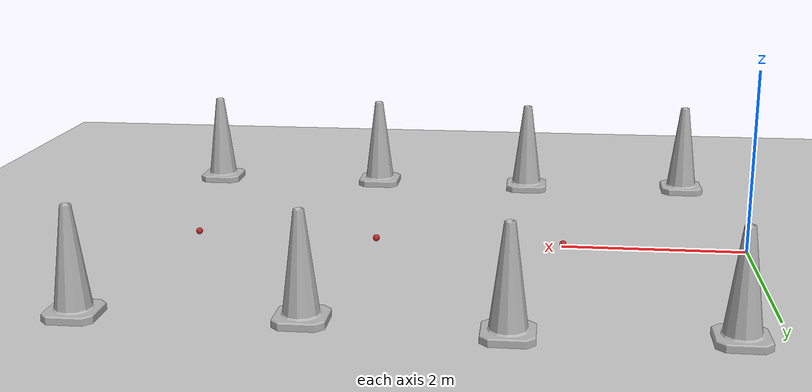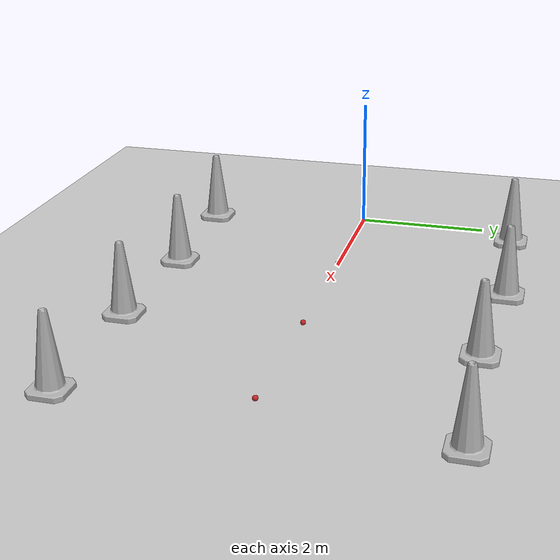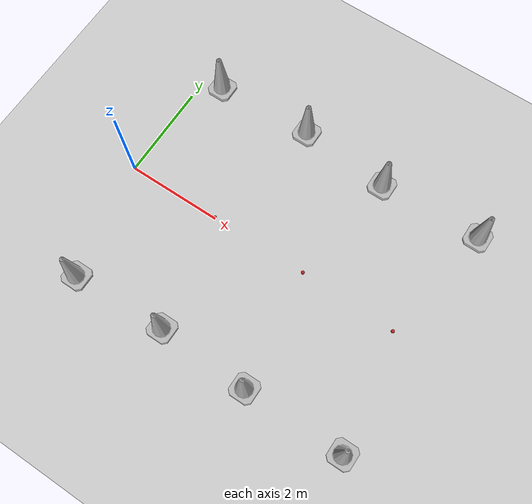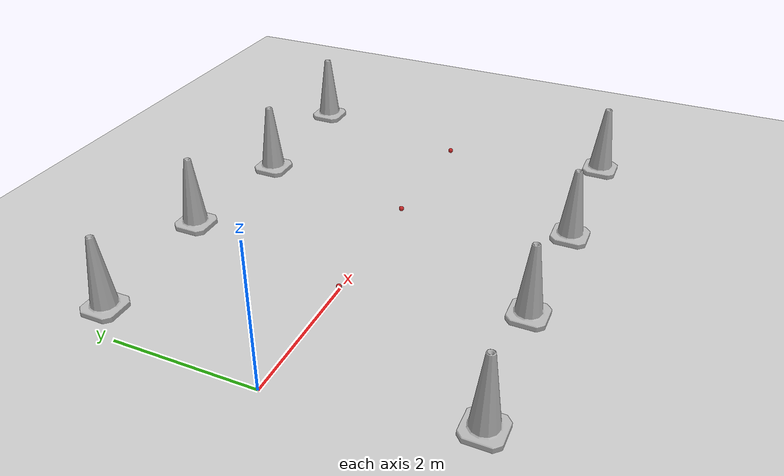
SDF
<sdf version="1.7">
 <world name="default">
  <light name="sun" type="directional">
   <pose>0 0 10 0 -0 0</pose>
   <diffuse>0.8 0.8 0.8 1</diffuse>
   <specular>0.2 0.2 0.2 1</specular>
   <attenuation>
    <range>1000</range>
    <constant>0.9</constant>
    <linear>0.01</linear>
    <quadratic>0.001</quadratic>
   </attenuation>
   <direction>-0.5 0.1 -0.9</direction>
   <spot><inner_angle>0</inner_angle><outer_angle>0</outer_angle><falloff>0</falloff></spot>
  </light>
  <model name="ground_plane">
   <static>1</static>
   <link name="link">
    <collision name="collision">
     <geometry><plane><normal>0 0 1</normal><size>100 100</size></plane></geometry>
     <surface>
      <contact><collide_bitmask>65535</collide_bitmask></contact>
      <friction><ode><mu>100</mu><mu2>50</mu2></ode></friction>
     </surface>
    </collision>
    <visual name="visual">
     <cast_shadows>0</cast_shadows>
     <geometry><plane><normal>0 0 1</normal><size>100 100</size></plane></geometry>
     <material>
      <script><uri>file://media/materials/scripts/gazebo.material</uri><name>Gazebo/Grey</name></script>
     </material>
    </visual>
   </link>
  </model>
  <gravity>0 0 -9.8</gravity>
  <magnetic_field>6e-06 2.3e-05 -4.2e-05</magnetic_field>
  <atmosphere type="adiabatic"/>
  <physics type="ode">
   <max_step_size>0.001</max_step_size>
   <real_time_factor>1</real_time_factor>
   <real_time_update_rate>1000</real_time_update_rate>
  </physics>
  <scene><ambient>0.4 0.4 0.4 1</ambient><background>0.7 0.7 0.7 1</background><shadows>1</shadows></scene>
  <spherical_coordinates>
   <surface_model>EARTH_WGS84</surface_model>
   <latitude_deg>0</latitude_deg>
   <longitude_deg>0</longitude_deg>
   <elevation>0</elevation>
   <heading_deg>0</heading_deg>
  </spherical_coordinates>
  <model name="Construction Cone">
   <link name="link">
    <collision name="collision">
     <geometry>
      <mesh><scale>10 10 10</scale><uri>model://construction_cone/meshes/construction_cone.dae</uri></mesh>
     </geometry>
    </collision>
    <visual name="visual">
     <geometry>
      <mesh><scale>10 10 10</scale><uri>model://construction_cone/meshes/construction_cone.dae</uri></mesh>
     </geometry>
    </visual>
    <inertial>
     <inertia><ixx>1</ixx><ixy>0</ixy><ixz>0</ixz><iyy>1</iyy><iyz>0</iyz><izz>1</izz></inertia>
     <mass>1</mass>
    </inertial>
   </link>
   <pose>0.45702 -2.45963 -0 0 -0 0</pose>
  </model>
  <model name="Construction Cone_0">
   <link name="link">
    <collision name="collision">
     <geometry>
      <mesh><scale>10 10 10</scale><uri>model://construction_cone/meshes/construction_cone.dae</uri></mesh>
     </geometry>
    </collision>
    <visual name="visual">
     <geometry>
      <mesh><scale>10 10 10</scale><uri>model://construction_cone/meshes/construction_cone.dae</uri></mesh>
     </geometry>
    </visual>
    <inertial>
     <inertia><ixx>1</ixx><ixy>0</ixy><ixz>0</ixz><iyy>1</iyy><iyz>0</iyz><izz>1</izz></inertia>
     <mass>1</mass>
    </inertial>
   </link>
   <pose>2.44863 -2.38158 -1e-05 -1e-06 0 0</pose>
  </model>
  <model name="Construction Cone_1">
   <link name="link">
    <collision name="collision">
     <geometry>
      <mesh><scale>10 10 10</scale><uri>model://construction_cone/meshes/construction_cone.dae</uri></mesh>
     </geometry>
    </collision>
    <visual name="visual">
     <geometry>
      <mesh><scale>10 10 10</scale><uri>model://construction_cone/meshes/construction_cone.dae</uri></mesh>
     </geometry>
    </visual>
    <inertial>
     <inertia><ixx>1</ixx><ixy>0</ixy><ixz>0</ixz><iyy>1</iyy><iyz>0</iyz><izz>1</izz></inertia>
     <mass>1</mass>
    </inertial>
   </link>
   <pose>4.38781 -2.45378 -0 0 -1e-06 0</pose>
  </model>
  <model name="Construction Cone_2">
   <link name="link">
    <collision name="collision">
     <geometry>
      <mesh><scale>10 10 10</scale><uri>model://construction_cone/meshes/construction_cone.dae</uri></mesh>
     </geometry>
    </collision>
    <visual name="visual">
     <geometry>
      <mesh><scale>10 10 10</scale><uri>model://construction_cone/meshes/construction_cone.dae</uri></mesh>
     </geometry>
    </visual>
    <inertial>
     <inertia><ixx>1</ixx><ixy>0</ixy><ixz>0</ixz><iyy>1</iyy><iyz>0</iyz><izz>1</izz></inertia>
     <mass>1</mass>
    </inertial>
   </link>
   <pose>6.51637 -2.45455 -0 0 -0 0</pose>
  </model>
  <model name="Construction Cone_3">
   <link name="link">
    <collision name="collision">
     <geometry>
      <mesh><scale>10 10 10</scale><uri>model://construction_cone/meshes/construction_cone.dae</uri></mesh>
     </geometry>
    </collision>
    <visual name="visual">
     <geometry>
      <mesh><scale>10 10 10</scale><uri>model://construction_cone/meshes/construction_cone.dae</uri></mesh>
     </geometry>
    </visual>
    <inertial>
     <inertia><ixx>1</ixx><ixy>0</ixy><ixz>0</ixz><iyy>1</iyy><iyz>0</iyz><izz>1</izz></inertia>
     <mass>1</mass>
    </inertial>
   </link>
   <pose>0.437987 2.49852 -0 0 -1e-06 0</pose>
  </model>
  <model name="Construction Cone_4">
   <link name="link">
    <collision name="collision">
     <geometry>
      <mesh><scale>10 10 10</scale><uri>model://construction_cone/meshes/construction_cone.dae</uri></mesh>
     </geometry>
    </collision>
    <visual name="visual">
     <geometry>
      <mesh><scale>10 10 10</scale><uri>model://construction_cone/meshes/construction_cone.dae</uri></mesh>
     </geometry>
    </visual>
    <inertial>
     <inertia><ixx>1</ixx><ixy>0</ixy><ixz>0</ixz><iyy>1</iyy><iyz>0</iyz><izz>1</izz></inertia>
     <mass>1</mass>
    </inertial>
   </link>
   <pose>2.49729 2.59361 -0 0 -0 0</pose>
  </model>
  <model name="Construction Cone_5">
   <link name="link">
    <collision name="collision">
     <geometry>
      <mesh><scale>10 10 10</scale><uri>model://construction_cone/meshes/construction_cone.dae</uri></mesh>
     </geometry>
    </collision>
    <visual name="visual">
     <geometry>
      <mesh><scale>10 10 10</scale><uri>model://construction_cone/meshes/construction_cone.dae</uri></mesh>
     </geometry>
    </visual>
    <inertial>
     <inertia><ixx>1</ixx><ixy>0</ixy><ixz>0</ixz><iyy>1</iyy><iyz>0</iyz><izz>1</izz></inertia>
     <mass>1</mass>
    </inertial>
   </link>
   <pose>4.40935 2.42738 -0 0 -1e-06 0</pose>
  </model>
  <model name="Construction Cone_6">
   <link name="link">
    <collision name="collision">
     <geometry>
      <mesh><scale>10 10 10</scale><uri>model://construction_cone/meshes/construction_cone.dae</uri></mesh>
     </geometry>
    </collision>
    <visual name="visual">
     <geometry>
      <mesh><scale>10 10 10</scale><uri>model://construction_cone/meshes/construction_cone.dae</uri></mesh>
     </geometry>
    </visual>
    <inertial>
     <inertia><ixx>1</ixx><ixy>0</ixy><ixz>0</ixz><iyy>1</iyy><iyz>0</iyz><izz>1</izz></inertia>
     <mass>1</mass>
    </inertial>
   </link>
   <pose>6.55742 2.51009 -0 0 -1e-06 0</pose>
  </model>
  <model name="cricket_ball">
   <link name="link">
    <pose>0 0 0.0375 0 -0 0</pose>
    <inertial>
     <mass>0.1467</mass>
     <inertia>
      <ixx>8.25187e-05</ixx>
      <ixy>0</ixy>
      <ixz>0</ixz>
      <iyy>8.25187e-05</iyy>
      <iyz>0</iyz>
      <izz>8.25187e-05</izz>
     </inertia>
    </inertial>
    <collision name="collision">
     <geometry><sphere><radius>0.0375</radius></sphere></geometry>
     <surface>
      <contact>
       <poissons_ratio>0.347</poissons_ratio>
       <elastic_modulus>8.8e+09</elastic_modulus>
       <ode><kp>100000</kp><kd>100</kd><max_vel>100</max_vel><min_depth>0.001</min_depth></ode>
      </contact>
      <friction>
       <torsional>
        <coefficient>1</coefficient>
        <use_patch_radius>0</use_patch_radius>
        <surface_radius>0.01</surface_radius>
       </torsional>
      </friction>
     </surface>
    </collision>
    <visual name="visual">
     <geometry><sphere><radius>0.0375</radius></sphere></geometry>
     <material>
      <script><uri>file://media/materials/scripts/gazebo.material</uri><name>Gazebo/Red</name></script>
     </material>
    </visual>
    <velocity_decay><linear>0</linear><angular>0.005</angular></velocity_decay>
   </link>
   <pose>1.98971 0.008875 -0.001014 0 -0 0</pose>
  </model>
  <model name="cricket_ball_0">
   <link name="link">
    <pose>0 0 0.0375 0 -0 0</pose>
    <inertial>
     <mass>0.1467</mass>
     <inertia>
      <ixx>8.25187e-05</ixx>
      <ixy>0</ixy>
      <ixz>0</ixz>
      <iyy>8.25187e-05</iyy>
      <iyz>0</iyz>
      <izz>8.25187e-05</izz>
     </inertia>
    </inertial>
    <collision name="collision">
     <geometry><sphere><radius>0.0375</radius></sphere></geometry>
     <surface>
      <contact>
       <poissons_ratio>0.347</poissons_ratio>
       <elastic_modulus>8.8e+09</elastic_modulus>
       <ode><kp>100000</kp><kd>100</kd><max_vel>100</max_vel><min_depth>0.001</min_depth></ode>
      </contact>
      <friction>
       <torsional>
        <coefficient>1</coefficient>
        <use_patch_radius>0</use_patch_radius>
        <surface_radius>0.01</surface_radius>
       </torsional>
      </friction>
     </surface>
    </collision>
    <visual name="visual">
     <geometry><sphere><radius>0.0375</radius></sphere></geometry>
     <material>
      <script><uri>file://media/materials/scripts/gazebo.material</uri><name>Gazebo/Red</name></script>
     </material>
    </visual>
    <velocity_decay><linear>0</linear><angular>0.005</angular></velocity_decay>
   </link>
   <pose>4.07025 0.01219 -0.001014 0 -0 0</pose>
  </model>
  <model name="cricket_ball_1">
   <link name="link">
    <pose>0 0 0.0375 0 -0 0</pose>
    <inertial>
     <mass>0.1467</mass>
     <inertia>
      <ixx>8.25187e-05</ixx>
      <ixy>0</ixy>
      <ixz>0</ixz>
      <iyy>8.25187e-05</iyy>
      <iyz>0</iyz>
      <izz>8.25187e-05</izz>
     </inertia>
    </inertial>
    <collision name="collision">
     <geometry><sphere><radius>0.0375</radius></sphere></geometry>
     <surface>
      <contact>
       <poissons_ratio>0.347</poissons_ratio>
       <elastic_modulus>8.8e+09</elastic_modulus>
       <ode><kp>100000</kp><kd>100</kd><max_vel>100</max_vel><min_depth>0.001</min_depth></ode>
      </contact>
      <friction>
       <torsional>
        <coefficient>1</coefficient>
        <use_patch_radius>0</use_patch_radius>
        <surface_radius>0.01</surface_radius>
       </torsional>
      </friction>
     </surface>
    </collision>
    <visual name="visual">
     <geometry><sphere><radius>0.0375</radius></sphere></geometry>
     <material>
      <script><uri>file://media/materials/scripts/gazebo.material</uri><name>Gazebo/Red</name></script>
     </material>
    </visual>
    <velocity_decay><linear>0</linear><angular>0.005</angular></velocity_decay>
   </link>
   <pose>6.11604 -0.024546 -0.001014 0 -0 0</pose>
  </model>
 </world>
</sdf>
